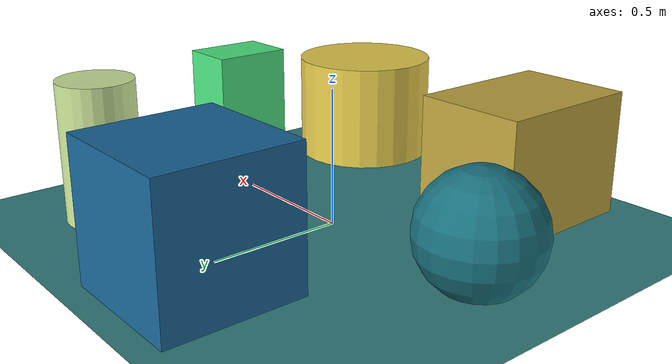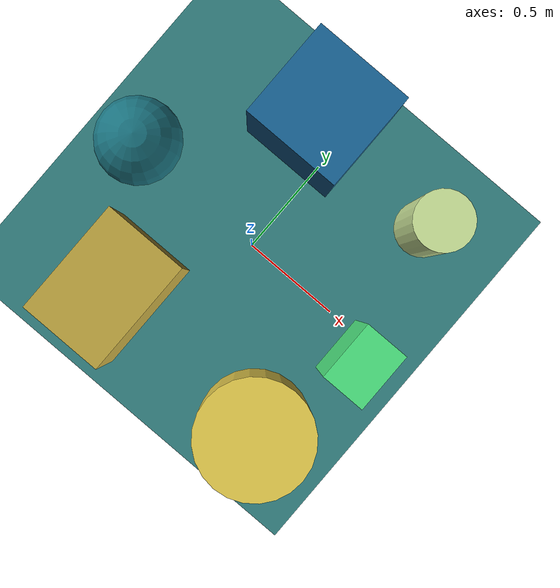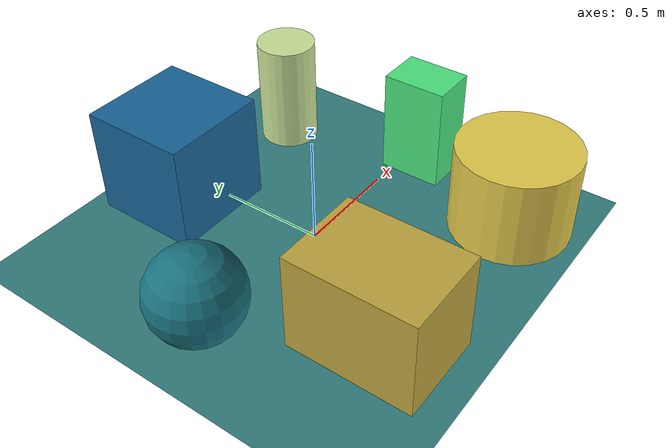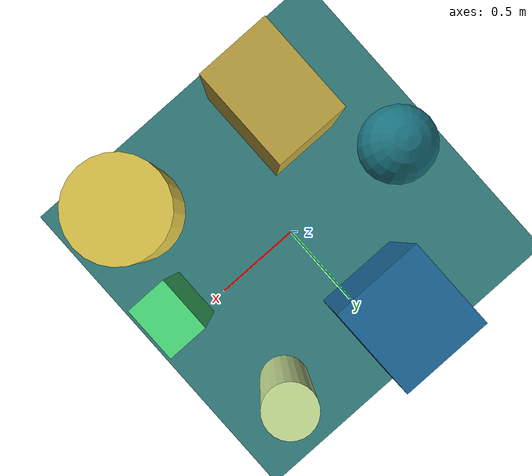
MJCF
<mujoco>
   <asset>
<texture type="skybox" builtin="gradient" rgb1="0.7 0.5 0.2" rgb2="0.8 0.1 0.5" width="256" height="256"/>
<texture name="gradient_0" builtin="gradient" rgb1="0.8 0.6 0.2" rgb2="0.7 0.7 0.3" width="200" height="200"/>
<texture name="gradient_1" builtin="gradient" rgb1="0.2 0.2 1.0" rgb2="0.0 0.7 0.0" width="200" height="200"/>
<texture name="flat_2" builtin="flat" rgb1="0.9 0.8 0.3" rgb2="0.9 0.8 0.3"  width="200" height="200"/>
<texture name="flat_3" builtin="flat" rgb1="0.8 0.9 0.6" rgb2="0.8 0.9 0.6"  width="200" height="200"/>
<texture name="flat_4" builtin="flat" rgb1="0.1 0.4 0.6" rgb2="0.1 0.4 0.6"  width="200" height="200"/>
<texture name="flat_5" builtin="flat" rgb1="0.3 0.9 0.5" rgb2="0.3 0.9 0.5"  width="200" height="200"/><material name="gradient_0_mat" reflectance="0" texture="gradient_0" texuniform="true"/>
<material name="gradient_1_mat" reflectance="0" texture="gradient_1" texuniform="true"/>
<material name="flat_2_mat" reflectance="0" texture="flat_2" texuniform="true"/>
<material name="flat_3_mat" reflectance="0" texture="flat_3" texuniform="true"/>
<material name="flat_4_mat" reflectance="0" texture="flat_4" texuniform="true"/>
<material name="flat_5_mat" reflectance="0" texture="flat_5" texuniform="true"/>
   </asset>

   <worldbody>
      <light diffuse=".9 .9 .9" pos="0 0 3" dir="0 0 -1"/>
     <geom type="plane" size="1 1 0.1" rgba="0.2 0.5 0.5 1"/>
<geom type="box" pos="-0.36 -0.58 0.23" size="0.21 0.29 0.23" material="gradient_0_mat" />
<geom type="sphere" pos="-0.71 0.02 0.21" size="0.21 0.21 0.21" material="gradient_1_mat" />
<geom type="cylinder" pos="0.58 -0.66 0.21" size="0.28 0.21 0.21" material="flat_2_mat" />
<geom type="cylinder" pos="0.58 0.6 0.26" size="0.14 0.26 0.26" material="flat_3_mat" />
<geom type="box" pos="-0.13 0.66 0.25" size="0.25 0.25 0.25" material="flat_4_mat" />
<geom type="box" pos="0.73 -0.1 0.25" size="0.11 0.15 0.25" material="flat_5_mat" /><camera euler="60 0 180" fovy="60" name="camera_a" pos="0 -1.5 1"></camera>   </worldbody>
</mujoco>
